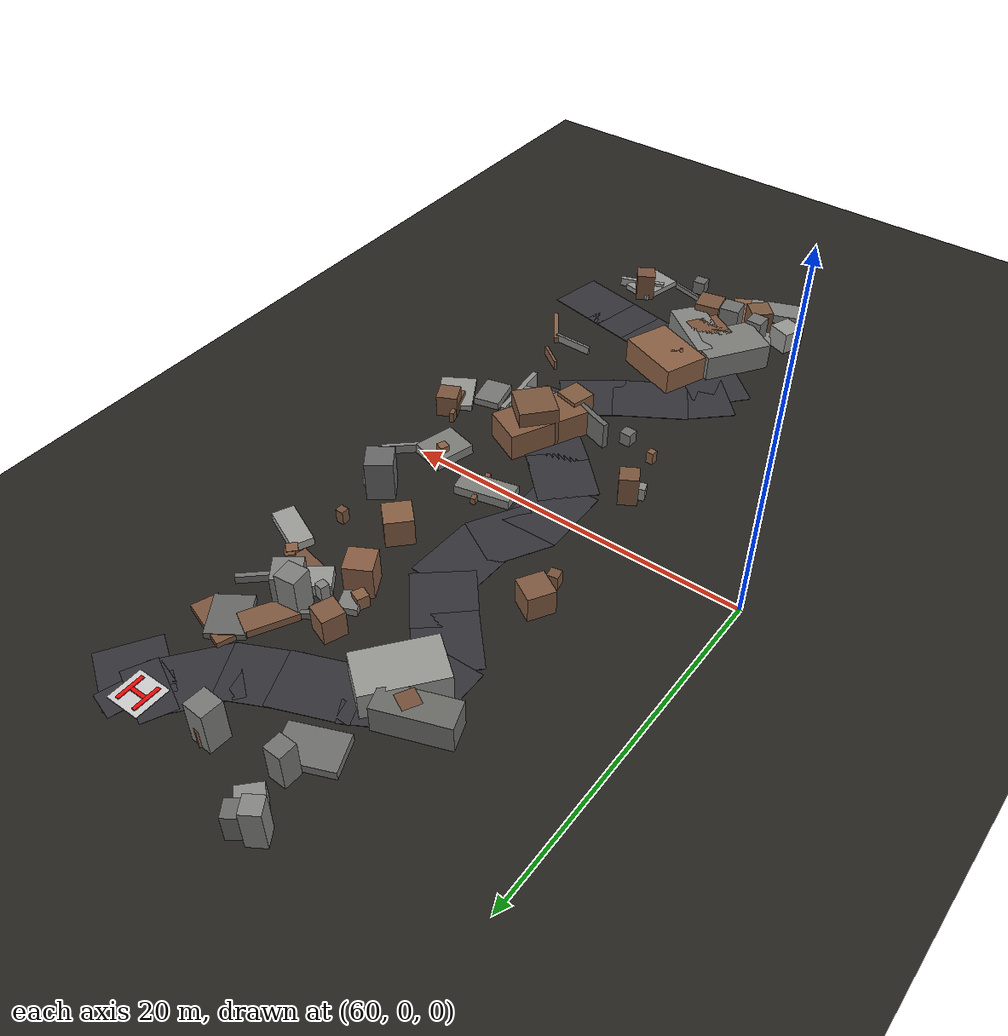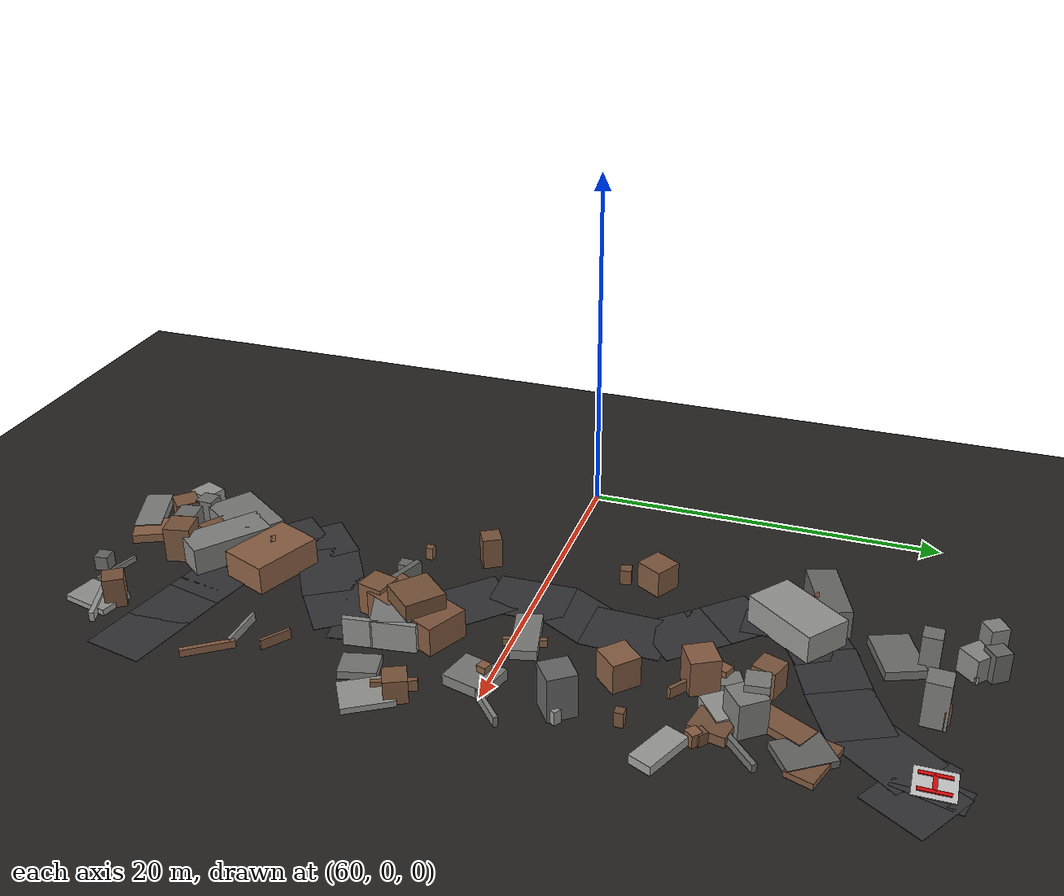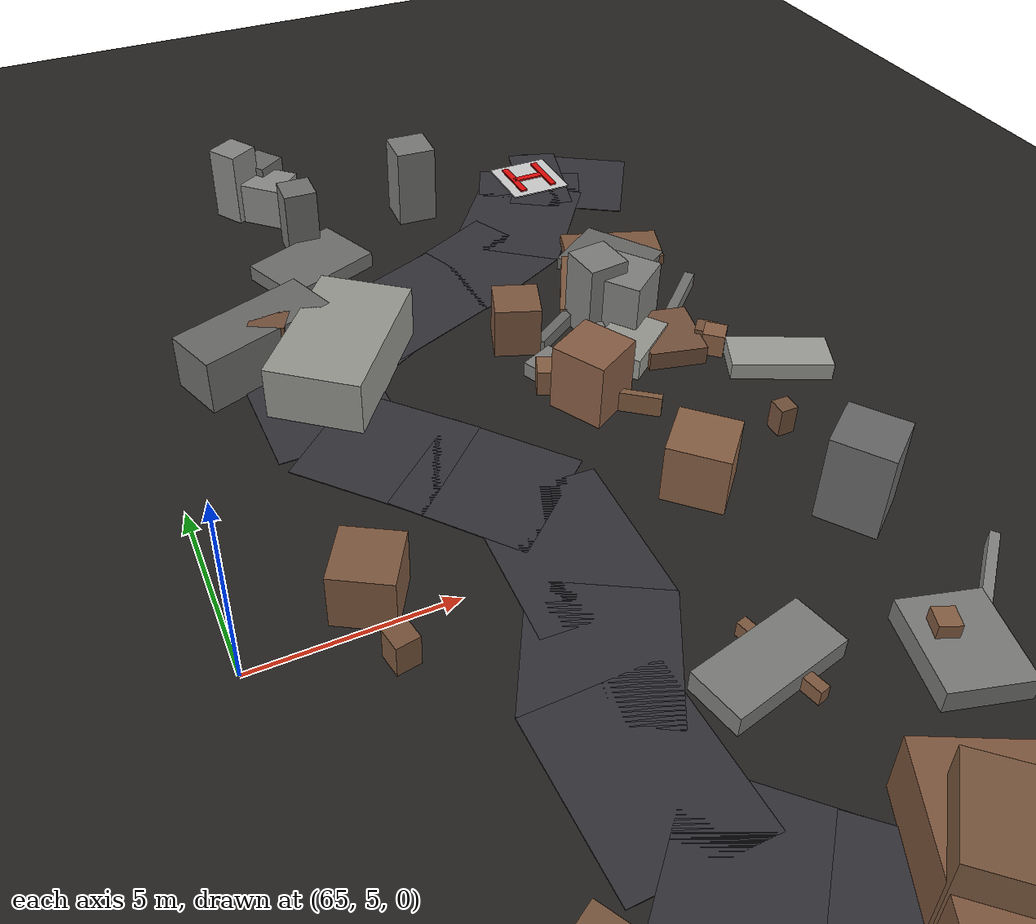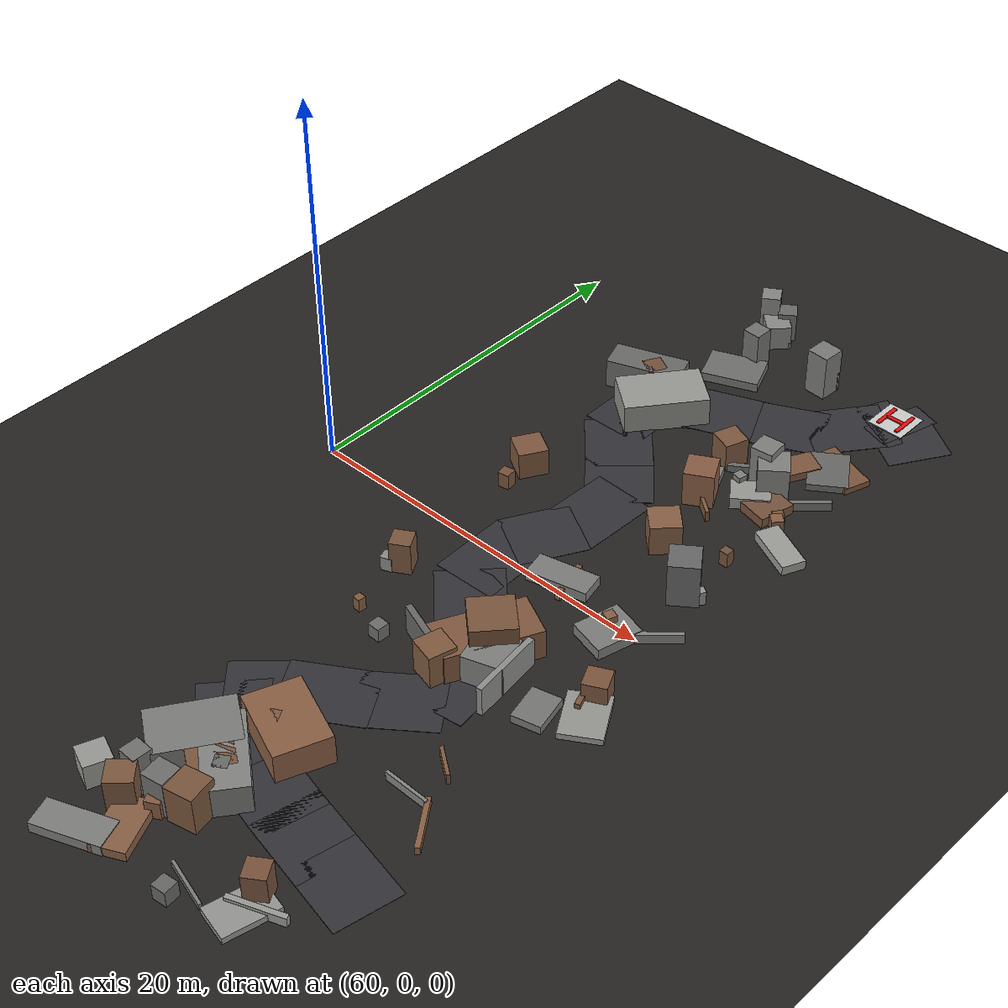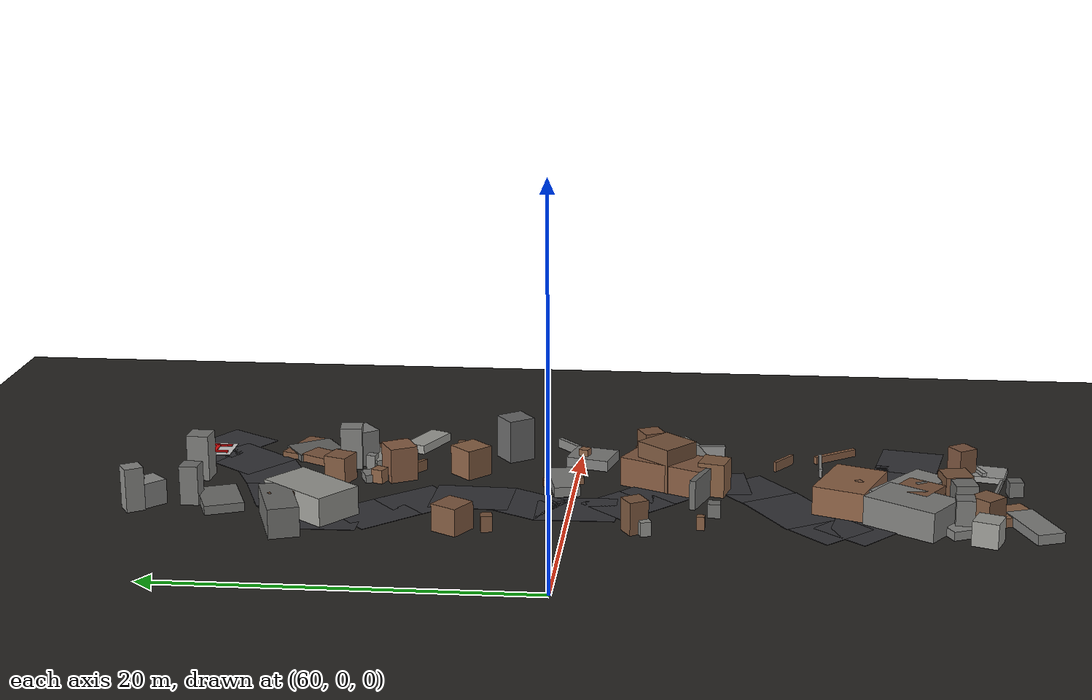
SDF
<sdf version="1.6">
 <world name="navitas_arena">
  <model name="ground_plane">
   <static>true</static>
   <link name="link">
    <collision name="collision">
     <geometry><plane><normal>0 0 1</normal><size>400 400</size></plane></geometry>
     <surface><friction><ode><mu>0.750</mu><mu2>0.750</mu2></ode></friction></surface>
    </collision>
    <visual name="visual">
     <cast_shadows>false</cast_shadows>
     <geometry><plane><normal>0 0 1</normal><size>400 400</size></plane></geometry>
     <material><ambient>0.150 0.140 0.130 1</ambient><diffuse>0.150 0.140 0.130 1</diffuse></material>
    </visual>
   </link>
  </model>
  <model name="road_zor_1_5">
   <static>true</static>
   <pose>80.479 -18.358 0.040 0 0 2.939</pose>
   <link name="link">
    <collision name="col"><geometry><box><size>3.775 3.400 0.020</size></box></geometry></collision>
    <visual name="vis">
     <geometry><box><size>3.775 3.400 0.020</size></box></geometry>
     <material><ambient>0.20 0.20 0.22 1</ambient><diffuse>0.20 0.20 0.22 1</diffuse></material>
    </visual>
   </link>
  </model>
  <model name="road_zor_1_6">
   <static>true</static>
   <pose>77.614 -17.769 0.040 0 0 2.938</pose>
   <link name="link">
    <collision name="col"><geometry><box><size>3.875 3.400 0.020</size></box></geometry></collision>
    <visual name="vis">
     <geometry><box><size>3.875 3.400 0.020</size></box></geometry>
     <material><ambient>0.20 0.20 0.22 1</ambient><diffuse>0.20 0.20 0.22 1</diffuse></material>
    </visual>
   </link>
  </model>
  <model name="road_zor_1_7">
   <static>true</static>
   <pose>74.786 -17.151 0.040 0 0 2.914</pose>
   <link name="link">
    <collision name="col"><geometry><box><size>3.715 3.400 0.020</size></box></geometry></collision>
    <visual name="vis">
     <geometry><box><size>3.715 3.400 0.020</size></box></geometry>
     <material><ambient>0.20 0.20 0.22 1</ambient><diffuse>0.20 0.20 0.22 1</diffuse></material>
    </visual>
   </link>
  </model>
  <model name="road_zor_1_8">
   <static>true</static>
   <pose>72.265 -16.490 0.040 0 0 2.852</pose>
   <link name="link">
    <collision name="col"><geometry><box><size>3.300 3.400 0.020</size></box></geometry></collision>
    <visual name="vis">
     <geometry><box><size>3.300 3.400 0.020</size></box></geometry>
     <material><ambient>0.20 0.20 0.22 1</ambient><diffuse>0.20 0.20 0.22 1</diffuse></material>
    </visual>
   </link>
  </model>
  <model name="road_zor_1_9">
   <static>true</static>
   <pose>70.047 -15.196 0.040 0 0 2.414</pose>
   <link name="link">
    <collision name="col"><geometry><box><size>3.761 3.400 0.020</size></box></geometry></collision>
    <visual name="vis">
     <geometry><box><size>3.761 3.400 0.020</size></box></geometry>
     <material><ambient>0.20 0.20 0.22 1</ambient><diffuse>0.20 0.20 0.22 1</diffuse></material>
    </visual>
   </link>
  </model>
  <model name="road_zor_1_10">
   <static>true</static>
   <pose>69.868 -13.401 0.040 0 0 0.759</pose>
   <link name="link">
    <collision name="col"><geometry><box><size>3.351 3.400 0.020</size></box></geometry></collision>
    <visual name="vis">
     <geometry><box><size>3.351 3.400 0.020</size></box></geometry>
     <material><ambient>0.20 0.20 0.22 1</ambient><diffuse>0.20 0.20 0.22 1</diffuse></material>
    </visual>
   </link>
  </model>
  <model name="road_zor_1_11">
   <static>true</static>
   <pose>72.246 -11.646 0.040 0 0 0.549</pose>
   <link name="link">
    <collision name="col"><geometry><box><size>4.392 3.400 0.020</size></box></geometry></collision>
    <visual name="vis">
     <geometry><box><size>4.392 3.400 0.020</size></box></geometry>
     <material><ambient>0.20 0.20 0.22 1</ambient><diffuse>0.20 0.20 0.22 1</diffuse></material>
    </visual>
   </link>
  </model>
  <model name="road_zor_1_12">
   <static>true</static>
   <pose>74.956 -9.813 0.040 0 0 0.646</pose>
   <link name="link">
    <collision name="col"><geometry><box><size>3.960 3.400 0.020</size></box></geometry></collision>
    <visual name="vis">
     <geometry><box><size>3.960 3.400 0.020</size></box></geometry>
     <material><ambient>0.20 0.20 0.22 1</ambient><diffuse>0.20 0.20 0.22 1</diffuse></material>
    </visual>
   </link>
  </model>
  <model name="road_zor_1_13">
   <static>true</static>
   <pose>75.978 -7.446 0.040 0 0 1.707</pose>
   <link name="link">
    <collision name="col"><geometry><box><size>3.819 3.400 0.020</size></box></geometry></collision>
    <visual name="vis">
     <geometry><box><size>3.819 3.400 0.020</size></box></geometry>
     <material><ambient>0.20 0.20 0.22 1</ambient><diffuse>0.20 0.20 0.22 1</diffuse></material>
    </visual>
   </link>
  </model>
  <model name="road_zor_1_14">
   <static>true</static>
   <pose>74.680 -5.000 0.040 0 0 2.404</pose>
   <link name="link">
    <collision name="col"><geometry><box><size>3.872 3.400 0.020</size></box></geometry></collision>
    <visual name="vis">
     <geometry><box><size>3.872 3.400 0.020</size></box></geometry>
     <material><ambient>0.20 0.20 0.22 1</ambient><diffuse>0.20 0.20 0.22 1</diffuse></material>
    </visual>
   </link>
  </model>
  <model name="road_zor_1_15">
   <static>true</static>
   <pose>72.558 -3.000 0.040 0 0 2.368</pose>
   <link name="link">
    <collision name="col"><geometry><box><size>3.762 3.400 0.020</size></box></geometry></collision>
    <visual name="vis">
     <geometry><box><size>3.762 3.400 0.020</size></box></geometry>
     <material><ambient>0.20 0.20 0.22 1</ambient><diffuse>0.20 0.20 0.22 1</diffuse></material>
    </visual>
   </link>
  </model>
  <model name="road_zor_1_16">
   <static>true</static>
   <pose>71.496 -0.333 0.040 0 0 1.594</pose>
   <link name="link">
    <collision name="col"><geometry><box><size>4.234 3.400 0.020</size></box></geometry></collision>
    <visual name="vis">
     <geometry><box><size>4.234 3.400 0.020</size></box></geometry>
     <material><ambient>0.20 0.20 0.22 1</ambient><diffuse>0.20 0.20 0.22 1</diffuse></material>
    </visual>
   </link>
  </model>
  <model name="road_zor_1_17">
   <static>true</static>
   <pose>72.110 2.500 0.040 0 0 1.061</pose>
   <link name="link">
    <collision name="col"><geometry><box><size>3.574 3.400 0.020</size></box></geometry></collision>
    <visual name="vis">
     <geometry><box><size>3.574 3.400 0.020</size></box></geometry>
     <material><ambient>0.20 0.20 0.22 1</ambient><diffuse>0.20 0.20 0.22 1</diffuse></material>
    </visual>
   </link>
  </model>
  <model name="road_zor_1_18">
   <static>true</static>
   <pose>72.820 5.344 0.040 0 0 1.537</pose>
   <link name="link">
    <collision name="col"><geometry><box><size>4.257 3.400 0.020</size></box></geometry></collision>
    <visual name="vis">
     <geometry><box><size>4.257 3.400 0.020</size></box></geometry>
     <material><ambient>0.20 0.20 0.22 1</ambient><diffuse>0.20 0.20 0.22 1</diffuse></material>
    </visual>
   </link>
  </model>
  <model name="road_zor_1_19">
   <static>true</static>
   <pose>71.984 8.077 0.040 0 0 2.274</pose>
   <link name="link">
    <collision name="col"><geometry><box><size>3.665 3.400 0.020</size></box></geometry></collision>
    <visual name="vis">
     <geometry><box><size>3.665 3.400 0.020</size></box></geometry>
     <material><ambient>0.20 0.20 0.22 1</ambient><diffuse>0.20 0.20 0.22 1</diffuse></material>
    </visual>
   </link>
  </model>
  <model name="road_zor_1_20">
   <static>true</static>
   <pose>70.146 10.157 0.040 0 0 2.315</pose>
   <link name="link">
    <collision name="col"><geometry><box><size>3.688 3.400 0.020</size></box></geometry></collision>
    <visual name="vis">
     <geometry><box><size>3.688 3.400 0.020</size></box></geometry>
     <material><ambient>0.20 0.20 0.22 1</ambient><diffuse>0.20 0.20 0.22 1</diffuse></material>
    </visual>
   </link>
  </model>
  <model name="road_zor_1_21">
   <static>true</static>
   <pose>69.188 12.483 0.040 0 0 1.581</pose>
   <link name="link">
    <collision name="col"><geometry><box><size>3.501 3.400 0.020</size></box></geometry></collision>
    <visual name="vis">
     <geometry><box><size>3.501 3.400 0.020</size></box></geometry>
     <material><ambient>0.20 0.20 0.22 1</ambient><diffuse>0.20 0.20 0.22 1</diffuse></material>
    </visual>
   </link>
  </model>
  <model name="road_zor_1_22">
   <static>true</static>
   <pose>70.385 14.469 0.040 0 0 0.516</pose>
   <link name="link">
    <collision name="col"><geometry><box><size>3.684 3.400 0.020</size></box></geometry></collision>
    <visual name="vis">
     <geometry><box><size>3.684 3.400 0.020</size></box></geometry>
     <material><ambient>0.20 0.20 0.22 1</ambient><diffuse>0.20 0.20 0.22 1</diffuse></material>
    </visual>
   </link>
  </model>
  <model name="road_zor_1_23">
   <static>true</static>
   <pose>73.118 15.758 0.040 0 0 0.377</pose>
   <link name="link">
    <collision name="col"><geometry><box><size>4.174 3.400 0.020</size></box></geometry></collision>
    <visual name="vis">
     <geometry><box><size>4.174 3.400 0.020</size></box></geometry>
     <material><ambient>0.20 0.20 0.22 1</ambient><diffuse>0.20 0.20 0.22 1</diffuse></material>
    </visual>
   </link>
  </model>
  <model name="road_zor_1_24">
   <static>true</static>
   <pose>75.810 16.930 0.040 0 0 0.453</pose>
   <link name="link">
    <collision name="col"><geometry><box><size>3.502 3.400 0.020</size></box></geometry></collision>
    <visual name="vis">
     <geometry><box><size>3.502 3.400 0.020</size></box></geometry>
     <material><ambient>0.20 0.20 0.22 1</ambient><diffuse>0.20 0.20 0.22 1</diffuse></material>
    </visual>
   </link>
  </model>
  <model name="road_zor_1_25">
   <static>true</static>
   <pose>77.993 18.815 0.040 0 0 0.914</pose>
   <link name="link">
    <collision name="col"><geometry><box><size>4.219 3.400 0.020</size></box></geometry></collision>
    <visual name="vis">
     <geometry><box><size>4.219 3.400 0.020</size></box></geometry>
     <material><ambient>0.20 0.20 0.22 1</ambient><diffuse>0.20 0.20 0.22 1</diffuse></material>
    </visual>
   </link>
  </model>
  <model name="road_zor_1_26">
   <static>true</static>
   <pose>79.212 20.565 0.040 0 0 1.128</pose>
   <link name="link">
    <collision name="col"><geometry><box><size>1.863 3.400 0.020</size></box></geometry></collision>
    <visual name="vis">
     <geometry><box><size>1.863 3.400 0.020</size></box></geometry>
     <material><ambient>0.20 0.20 0.22 1</ambient><diffuse>0.20 0.20 0.22 1</diffuse></material>
    </visual>
   </link>
  </model>
  <model name="road_zor_2_17">
   <static>true</static>
   <pose>80.588 20.266 0.040 0 0 2.581</pose>
   <link name="link">
    <collision name="col"><geometry><box><size>3.662 3.400 0.020</size></box></geometry></collision>
    <visual name="vis">
     <geometry><box><size>3.662 3.400 0.020</size></box></geometry>
     <material><ambient>0.20 0.20 0.22 1</ambient><diffuse>0.20 0.20 0.22 1</diffuse></material>
    </visual>
   </link>
  </model>
  <model name="road_zor_3_27">
   <static>true</static>
   <pose>79.767 20.898 0.040 0 0 2.857</pose>
   <link name="link">
    <collision name="col"><geometry><box><size>1.626 3.400 0.020</size></box></geometry></collision>
    <visual name="vis">
     <geometry><box><size>1.626 3.400 0.020</size></box></geometry>
     <material><ambient>0.20 0.20 0.22 1</ambient><diffuse>0.20 0.20 0.22 1</diffuse></material>
    </visual>
   </link>
  </model>
  <model name="blk_zor_1_0_0">
   <static>true</static>
   <pose>72.610 -15.055 0.800 0 0 2.084</pose>
   <link name="link">
    <collision name="col"><geometry><box><size>0.669 0.669 1.600</size></box></geometry></collision>
    <visual name="vis">
     <geometry><box><size>0.669 0.669 1.600</size></box></geometry>
     <material><ambient>0.51 0.36 0.26 1</ambient><diffuse>0.51 0.36 0.26 1</diffuse></material>
    </visual>
   </link>
  </model>
  <model name="blk_zor_1_0_1">
   <static>true</static>
   <pose>72.599 -17.766 0.800 0 0 2.480</pose>
   <link name="link">
    <collision name="col"><geometry><box><size>4.468 2.106 1.600</size></box></geometry></collision>
    <visual name="vis">
     <geometry><box><size>4.468 2.106 1.600</size></box></geometry>
     <material><ambient>0.52 0.52 0.51 1</ambient><diffuse>0.52 0.52 0.51 1</diffuse></material>
    </visual>
   </link>
  </model>
  <model name="blk_zor_1_0_2">
   <static>true</static>
   <pose>72.168 -18.153 0.800 0 0 2.575</pose>
   <link name="link">
    <collision name="col"><geometry><box><size>2.085 2.085 1.600</size></box></geometry></collision>
    <visual name="vis">
     <geometry><box><size>2.085 2.085 1.600</size></box></geometry>
     <material><ambient>0.49 0.34 0.24 1</ambient><diffuse>0.49 0.34 0.24 1</diffuse></material>
    </visual>
   </link>
  </model>
  <model name="blk_zor_1_0_3">
   <static>true</static>
   <pose>73.030 -18.261 0.800 0 0 0.579</pose>
   <link name="link">
    <collision name="col"><geometry><box><size>0.704 0.704 1.600</size></box></geometry></collision>
    <visual name="vis">
     <geometry><box><size>0.704 0.704 1.600</size></box></geometry>
     <material><ambient>0.42 0.42 0.41 1</ambient><diffuse>0.42 0.42 0.41 1</diffuse></material>
    </visual>
   </link>
  </model>
  <model name="blk_zor_1_0_4">
   <static>true</static>
   <pose>70.535 -17.700 0.800 0 0 0.977</pose>
   <link name="link">
    <collision name="col"><geometry><box><size>4.115 2.708 1.600</size></box></geometry></collision>
    <visual name="vis">
     <geometry><box><size>4.115 2.708 1.600</size></box></geometry>
     <material><ambient>0.49 0.49 0.48 1</ambient><diffuse>0.49 0.49 0.48 1</diffuse></material>
    </visual>
   </link>
  </model>
  <model name="blk_zor_1_0_5">
   <static>true</static>
   <pose>73.119 -14.687 0.800 0 0 2.768</pose>
   <link name="link">
    <collision name="col"><geometry><box><size>3.964 2.799 1.600</size></box></geometry></collision>
    <visual name="vis">
     <geometry><box><size>3.964 2.799 1.600</size></box></geometry>
     <material><ambient>0.55 0.38 0.27 1</ambient><diffuse>0.55 0.38 0.27 1</diffuse></material>
    </visual>
   </link>
  </model>
  <model name="blk_zor_1_1_0">
   <static>true</static>
   <pose>76.683 -5.889 0.800 0 0 1.874</pose>
   <link name="link">
    <collision name="col"><geometry><box><size>2.076 2.076 1.600</size></box></geometry></collision>
    <visual name="vis">
     <geometry><box><size>2.076 2.076 1.600</size></box></geometry>
     <material><ambient>0.50 0.50 0.49 1</ambient><diffuse>0.50 0.50 0.49 1</diffuse></material>
    </visual>
   </link>
  </model>
  <model name="blk_zor_1_1_1">
   <static>true</static>
   <pose>77.766 -6.126 0.800 0 0 1.690</pose>
   <link name="link">
    <collision name="col"><geometry><box><size>3.843 0.296 1.600</size></box></geometry></collision>
    <visual name="vis">
     <geometry><box><size>3.843 0.296 1.600</size></box></geometry>
     <material><ambient>0.56 0.56 0.55 1</ambient><diffuse>0.56 0.56 0.55 1</diffuse></material>
    </visual>
   </link>
  </model>
  <model name="blk_zor_1_1_2">
   <static>true</static>
   <pose>73.731 -7.014 0.800 0 0 2.800</pose>
   <link name="link">
    <collision name="col"><geometry><box><size>3.606 0.332 1.600</size></box></geometry></collision>
    <visual name="vis">
     <geometry><box><size>3.606 0.332 1.600</size></box></geometry>
     <material><ambient>0.41 0.41 0.40 1</ambient><diffuse>0.41 0.41 0.40 1</diffuse></material>
    </visual>
   </link>
  </model>
  <model name="blk_zor_1_1_3">
   <static>true</static>
   <pose>75.589 -5.103 0.800 0 0 1.119</pose>
   <link name="link">
    <collision name="col"><geometry><box><size>4.817 2.415 1.600</size></box></geometry></collision>
    <visual name="vis">
     <geometry><box><size>4.817 2.415 1.600</size></box></geometry>
     <material><ambient>0.51 0.35 0.25 1</ambient><diffuse>0.51 0.35 0.25 1</diffuse></material>
    </visual>
   </link>
  </model>
  <model name="blk_zor_1_1_4">
   <static>true</static>
   <pose>75.812 -4.917 1.245 0 0 0.841</pose>
   <link name="link">
    <collision name="col"><geometry><box><size>2.232 2.232 2.489</size></box></geometry></collision>
    <visual name="vis">
     <geometry><box><size>2.232 2.232 2.489</size></box></geometry>
     <material><ambient>0.48 0.34 0.24 1</ambient><diffuse>0.48 0.34 0.24 1</diffuse></material>
    </visual>
   </link>
  </model>
  <model name="blk_zor_1_1_5">
   <static>true</static>
   <pose>74.827 -7.527 0.918 0 0 1.313</pose>
   <link name="link">
    <collision name="col"><geometry><box><size>1.452 1.452 1.835</size></box></geometry></collision>
    <visual name="vis">
     <geometry><box><size>1.452 1.452 1.835</size></box></geometry>
     <material><ambient>0.51 0.36 0.25 1</ambient><diffuse>0.51 0.36 0.25 1</diffuse></material>
    </visual>
   </link>
  </model>
  <model name="blk_zor_1_2_0">
   <static>true</static>
   <pose>70.137 13.495 0.800 0 0 0.905</pose>
   <link name="link">
    <collision name="col"><geometry><box><size>4.401 2.657 1.600</size></box></geometry></collision>
    <visual name="vis">
     <geometry><box><size>4.401 2.657 1.600</size></box></geometry>
     <material><ambient>0.60 0.60 0.58 1</ambient><diffuse>0.60 0.60 0.58 1</diffuse></material>
    </visual>
   </link>
  </model>
  <model name="blk_zor_1_2_1">
   <static>true</static>
   <pose>68.570 14.751 0.800 0 0 2.650</pose>
   <link name="link">
    <collision name="col"><geometry><box><size>1.004 1.004 1.600</size></box></geometry></collision>
    <visual name="vis">
     <geometry><box><size>1.004 1.004 1.600</size></box></geometry>
     <material><ambient>0.46 0.32 0.23 1</ambient><diffuse>0.46 0.32 0.23 1</diffuse></material>
    </visual>
   </link>
  </model>
  <model name="blk_zor_1_2_5">
   <static>true</static>
   <pose>68.097 14.767 0.800 0 0 0.346</pose>
   <link name="link">
    <collision name="col"><geometry><box><size>3.963 1.620 1.600</size></box></geometry></collision>
    <visual name="vis">
     <geometry><box><size>3.963 1.620 1.600</size></box></geometry>
     <material><ambient>0.42 0.42 0.41 1</ambient><diffuse>0.42 0.42 0.41 1</diffuse></material>
    </visual>
   </link>
  </model>
  <model name="deb_zor_0">
   <static>true</static>
   <pose>78.560 -22.097 0.169 0 0 1.342</pose>
   <link name="link">
    <collision name="col"><geometry><box><size>2.758 1.846 0.338</size></box></geometry></collision>
    <visual name="vis">
     <geometry><box><size>2.758 1.846 0.338</size></box></geometry>
     <material><ambient>0.59 0.59 0.58 1</ambient><diffuse>0.59 0.59 0.58 1</diffuse></material>
    </visual>
   </link>
  </model>
  <model name="deb_zor_3">
   <static>true</static>
   <pose>77.742 11.178 0.319 0 0 0.641</pose>
   <link name="link">
    <collision name="col"><geometry><box><size>1.991 1.432 0.638</size></box></geometry></collision>
    <visual name="vis">
     <geometry><box><size>1.991 1.432 0.638</size></box></geometry>
     <material><ambient>0.60 0.60 0.58 1</ambient><diffuse>0.60 0.60 0.58 1</diffuse></material>
    </visual>
   </link>
  </model>
  <model name="deb_zor_4">
   <static>true</static>
   <pose>70.679 22.341 0.675 0 0 0.809</pose>
   <link name="link">
    <collision name="col"><geometry><box><size>1.320 1.320 1.350</size></box></geometry></collision>
    <visual name="vis">
     <geometry><box><size>1.320 1.320 1.350</size></box></geometry>
     <material><ambient>0.55 0.55 0.54 1</ambient><diffuse>0.55 0.55 0.54 1</diffuse></material>
    </visual>
   </link>
  </model>
  <model name="deb_zor_6">
   <static>true</static>
   <pose>79.848 10.633 0.336 0 0 0.860</pose>
   <link name="link">
    <collision name="col"><geometry><box><size>0.543 0.543 0.672</size></box></geometry></collision>
    <visual name="vis">
     <geometry><box><size>0.543 0.543 0.672</size></box></geometry>
     <material><ambient>0.47 0.33 0.23 1</ambient><diffuse>0.47 0.33 0.23 1</diffuse></material>
    </visual>
   </link>
  </model>
  <model name="deb_zor_7">
   <static>true</static>
   <pose>79.664 3.783 1.207 0 0 2.199</pose>
   <link name="link">
    <collision name="col"><geometry><box><size>1.545 1.545 2.415</size></box></geometry></collision>
    <visual name="vis">
     <geometry><box><size>1.545 1.545 2.415</size></box></geometry>
     <material><ambient>0.41 0.41 0.41 1</ambient><diffuse>0.41 0.41 0.41 1</diffuse></material>
    </visual>
   </link>
  </model>
  <model name="deb_zor_11">
   <static>true</static>
   <pose>74.970 20.658 1.258 0 0 3.082</pose>
   <link name="link">
    <collision name="col"><geometry><box><size>1.226 1.226 2.516</size></box></geometry></collision>
    <visual name="vis">
     <geometry><box><size>1.226 1.226 2.516</size></box></geometry>
     <material><ambient>0.48 0.48 0.47 1</ambient><diffuse>0.48 0.48 0.47 1</diffuse></material>
    </visual>
   </link>
  </model>
  <model name="deb_zor_21">
   <static>true</static>
   <pose>75.494 10.787 0.221 0 0 1.992</pose>
   <link name="link">
    <collision name="col"><geometry><box><size>1.940 1.031 0.441</size></box></geometry></collision>
    <visual name="vis">
     <geometry><box><size>1.940 1.031 0.441</size></box></geometry>
     <material><ambient>0.50 0.50 0.49 1</ambient><diffuse>0.50 0.50 0.49 1</diffuse></material>
    </visual>
   </link>
  </model>
  <model name="deb_zor_22">
   <static>true</static>
   <pose>81.115 -3.835 0.656 0 0 0.455</pose>
   <link name="link">
    <collision name="col"><geometry><box><size>1.210 1.210 1.313</size></box></geometry></collision>
    <visual name="vis">
     <geometry><box><size>1.210 1.210 1.313</size></box></geometry>
     <material><ambient>0.49 0.34 0.24 1</ambient><diffuse>0.49 0.34 0.24 1</diffuse></material>
    </visual>
   </link>
  </model>
  <model name="deb_zor_29">
   <static>true</static>
   <pose>74.985 0.659 0.276 0 0 0.223</pose>
   <link name="link">
    <collision name="col"><geometry><box><size>3.196 1.393 0.552</size></box></geometry></collision>
    <visual name="vis">
     <geometry><box><size>3.196 1.393 0.552</size></box></geometry>
     <material><ambient>0.49 0.49 0.48 1</ambient><diffuse>0.49 0.49 0.48 1</diffuse></material>
    </visual>
   </link>
  </model>
  <model name="deb_zor_30">
   <static>true</static>
   <pose>78.900 -13.336 0.246 0 0 3.124</pose>
   <link name="link">
    <collision name="col"><geometry><box><size>2.410 0.170 0.492</size></box></geometry></collision>
    <visual name="vis">
     <geometry><box><size>2.410 0.170 0.492</size></box></geometry>
     <material><ambient>0.53 0.53 0.52 1</ambient><diffuse>0.53 0.53 0.52 1</diffuse></material>
    </visual>
   </link>
  </model>
  <model name="deb_zor_32">
   <static>true</static>
   <pose>78.130 12.382 0.983 0 0 2.222</pose>
   <link name="link">
    <collision name="col"><geometry><box><size>1.575 1.575 1.965</size></box></geometry></collision>
    <visual name="vis">
     <geometry><box><size>1.575 1.575 1.965</size></box></geometry>
     <material><ambient>0.51 0.51 0.50 1</ambient><diffuse>0.51 0.51 0.50 1</diffuse></material>
    </visual>
   </link>
  </model>
  <model name="deb_zor_35">
   <static>true</static>
   <pose>70.816 22.269 0.197 0 0 0.161</pose>
   <link name="link">
    <collision name="col"><geometry><box><size>1.565 0.208 0.393</size></box></geometry></collision>
    <visual name="vis">
     <geometry><box><size>1.565 0.208 0.393</size></box></geometry>
     <material><ambient>0.60 0.60 0.58 1</ambient><diffuse>0.60 0.60 0.58 1</diffuse></material>
    </visual>
   </link>
  </model>
  <model name="deb_zor_37">
   <static>true</static>
   <pose>79.735 15.773 0.168 0 0 2.811</pose>
   <link name="link">
    <collision name="col"><geometry><box><size>3.007 1.470 0.335</size></box></geometry></collision>
    <visual name="vis">
     <geometry><box><size>3.007 1.470 0.335</size></box></geometry>
     <material><ambient>0.49 0.34 0.24 1</ambient><diffuse>0.49 0.34 0.24 1</diffuse></material>
    </visual>
   </link>
  </model>
  <model name="deb_zor_50">
   <static>true</static>
   <pose>69.818 -20.260 0.239 0 0 2.009</pose>
   <link name="link">
    <collision name="col"><geometry><box><size>1.892 1.609 0.477</size></box></geometry></collision>
    <visual name="vis">
     <geometry><box><size>1.892 1.609 0.477</size></box></geometry>
     <material><ambient>0.53 0.53 0.52 1</ambient><diffuse>0.53 0.53 0.52 1</diffuse></material>
    </visual>
   </link>
  </model>
  <model name="deb_zor_56">
   <static>true</static>
   <pose>80.750 -14.216 0.204 0 0 2.190</pose>
   <link name="link">
    <collision name="col"><geometry><box><size>2.752 0.249 0.408</size></box></geometry></collision>
    <visual name="vis">
     <geometry><box><size>2.752 0.249 0.408</size></box></geometry>
     <material><ambient>0.55 0.38 0.27 1</ambient><diffuse>0.55 0.38 0.27 1</diffuse></material>
    </visual>
   </link>
  </model>
  <model name="deb_zor_60">
   <static>true</static>
   <pose>79.974 10.355 0.348 0 0 2.427</pose>
   <link name="link">
    <collision name="col"><geometry><box><size>0.614 0.614 0.695</size></box></geometry></collision>
    <visual name="vis">
     <geometry><box><size>0.614 0.614 0.695</size></box></geometry>
     <material><ambient>0.55 0.38 0.27 1</ambient><diffuse>0.55 0.38 0.27 1</diffuse></material>
    </visual>
   </link>
  </model>
  <model name="deb_zor_61">
   <static>true</static>
   <pose>73.273 -20.174 1.016 0 0 1.775</pose>
   <link name="link">
    <collision name="col"><geometry><box><size>1.490 1.490 2.031</size></box></geometry></collision>
    <visual name="vis">
     <geometry><box><size>1.490 1.490 2.031</size></box></geometry>
     <material><ambient>0.48 0.34 0.24 1</ambient><diffuse>0.48 0.34 0.24 1</diffuse></material>
    </visual>
   </link>
  </model>
  <model name="deb_zor_69">
   <static>true</static>
   <pose>68.714 -3.553 0.881 0 0 2.097</pose>
   <link name="link">
    <collision name="col"><geometry><box><size>1.072 1.072 1.762</size></box></geometry></collision>
    <visual name="vis">
     <geometry><box><size>1.072 1.072 1.762</size></box></geometry>
     <material><ambient>0.48 0.34 0.24 1</ambient><diffuse>0.48 0.34 0.24 1</diffuse></material>
    </visual>
   </link>
  </model>
  <model name="deb_zor_79">
   <static>true</static>
   <pose>71.000 20.134 1.069 0 0 1.531</pose>
   <link name="link">
    <collision name="col"><geometry><box><size>1.003 1.003 2.138</size></box></geometry></collision>
    <visual name="vis">
     <geometry><box><size>1.003 1.003 2.138</size></box></geometry>
     <material><ambient>0.45 0.45 0.44 1</ambient><diffuse>0.45 0.45 0.44 1</diffuse></material>
    </visual>
   </link>
  </model>
  <model name="deb_zor_83">
   <static>true</static>
   <pose>75.760 9.758 0.961 0 0 2.073</pose>
   <link name="link">
    <collision name="col"><geometry><box><size>1.547 1.547 1.921</size></box></geometry></collision>
    <visual name="vis">
     <geometry><box><size>1.547 1.547 1.921</size></box></geometry>
     <material><ambient>0.54 0.37 0.27 1</ambient><diffuse>0.54 0.37 0.27 1</diffuse></material>
    </visual>
   </link>
  </model>
  <model name="deb_zor_91">
   <static>true</static>
   <pose>79.125 -11.300 0.281 0 0 2.522</pose>
   <link name="link">
    <collision name="col"><geometry><box><size>1.663 0.175 0.563</size></box></geometry></collision>
    <visual name="vis">
     <geometry><box><size>1.663 0.175 0.563</size></box></geometry>
     <material><ambient>0.51 0.36 0.26 1</ambient><diffuse>0.51 0.36 0.26 1</diffuse></material>
    </visual>
   </link>
  </model>
  <model name="deb_zor_92">
   <static>true</static>
   <pose>69.296 -6.928 0.358 0 0 3.068</pose>
   <link name="link">
    <collision name="col"><geometry><box><size>0.412 0.412 0.716</size></box></geometry></collision>
    <visual name="vis">
     <geometry><box><size>0.412 0.412 0.716</size></box></geometry>
     <material><ambient>0.51 0.36 0.25 1</ambient><diffuse>0.51 0.36 0.25 1</diffuse></material>
    </visual>
   </link>
  </model>
  <model name="deb_zor_94">
   <static>true</static>
   <pose>70.313 -23.963 0.275 0 0 0.360</pose>
   <link name="link">
    <collision name="col"><geometry><box><size>3.470 1.517 0.550</size></box></geometry></collision>
    <visual name="vis">
     <geometry><box><size>3.470 1.517 0.550</size></box></geometry>
     <material><ambient>0.50 0.50 0.49 1</ambient><diffuse>0.50 0.50 0.49 1</diffuse></material>
    </visual>
   </link>
  </model>
  <model name="deb_zor_118">
   <static>true</static>
   <pose>76.822 11.492 0.463 0 0 1.359</pose>
   <link name="link">
    <collision name="col"><geometry><box><size>0.513 0.513 0.927</size></box></geometry></collision>
    <visual name="vis">
     <geometry><box><size>0.513 0.513 0.927</size></box></geometry>
     <material><ambient>0.51 0.51 0.50 1</ambient><diffuse>0.51 0.51 0.50 1</diffuse></material>
    </visual>
   </link>
  </model>
  <model name="deb_zor_120">
   <static>true</static>
   <pose>76.206 12.709 0.197 0 0 0.581</pose>
   <link name="link">
    <collision name="col"><geometry><box><size>1.739 0.287 0.395</size></box></geometry></collision>
    <visual name="vis">
     <geometry><box><size>1.739 0.287 0.395</size></box></geometry>
     <material><ambient>0.42 0.42 0.41 1</ambient><diffuse>0.42 0.42 0.41 1</diffuse></material>
    </visual>
   </link>
  </model>
  <model name="deb_zor_121">
   <static>true</static>
   <pose>80.540 3.948 0.376 0 0 2.575</pose>
   <link name="link">
    <collision name="col"><geometry><box><size>0.415 0.415 0.753</size></box></geometry></collision>
    <visual name="vis">
     <geometry><box><size>0.415 0.415 0.753</size></box></geometry>
     <material><ambient>0.59 0.59 0.57 1</ambient><diffuse>0.59 0.59 0.57 1</diffuse></material>
    </visual>
   </link>
  </model>
  <model name="deb_zor_133">
   <static>true</static>
   <pose>68.498 -21.400 0.668 0 0 2.771</pose>
   <link name="link">
    <collision name="col"><geometry><box><size>1.377 1.377 1.336</size></box></geometry></collision>
    <visual name="vis">
     <geometry><box><size>1.377 1.377 1.336</size></box></geometry>
     <material><ambient>0.60 0.60 0.58 1</ambient><diffuse>0.60 0.60 0.58 1</diffuse></material>
    </visual>
   </link>
  </model>
  <model name="deb_zor_135">
   <static>true</static>
   <pose>75.171 20.924 0.553 0 0 2.726</pose>
   <link name="link">
    <collision name="col"><geometry><box><size>0.688 0.688 1.106</size></box></geometry></collision>
    <visual name="vis">
     <geometry><box><size>0.688 0.688 1.106</size></box></geometry>
     <material><ambient>0.53 0.37 0.27 1</ambient><diffuse>0.53 0.37 0.27 1</diffuse></material>
    </visual>
   </link>
  </model>
  <model name="deb_zor_136">
   <static>true</static>
   <pose>79.788 -6.315 0.219 0 0 1.803</pose>
   <link name="link">
    <collision name="col"><geometry><box><size>1.979 1.528 0.439</size></box></geometry></collision>
    <visual name="vis">
     <geometry><box><size>1.979 1.528 0.439</size></box></geometry>
     <material><ambient>0.47 0.47 0.46 1</ambient><diffuse>0.47 0.47 0.46 1</diffuse></material>
    </visual>
   </link>
  </model>
  <model name="deb_zor_146">
   <static>true</static>
   <pose>79.036 -21.738 0.258 0 0 0.353</pose>
   <link name="link">
    <collision name="col"><geometry><box><size>2.817 0.268 0.517</size></box></geometry></collision>
    <visual name="vis">
     <geometry><box><size>2.817 0.268 0.517</size></box></geometry>
     <material><ambient>0.61 0.61 0.60 1</ambient><diffuse>0.61 0.61 0.60 1</diffuse></material>
    </visual>
   </link>
  </model>
  <model name="deb_zor_150">
   <static>true</static>
   <pose>76.669 5.923 0.825 0 0 2.373</pose>
   <link name="link">
    <collision name="col"><geometry><box><size>1.582 1.582 1.649</size></box></geometry></collision>
    <visual name="vis">
     <geometry><box><size>1.582 1.582 1.649</size></box></geometry>
     <material><ambient>0.54 0.38 0.27 1</ambient><diffuse>0.54 0.38 0.27 1</diffuse></material>
    </visual>
   </link>
  </model>
  <model name="deb_zor_151">
   <static>true</static>
   <pose>80.852 0.681 0.271 0 0 0.738</pose>
   <link name="link">
    <collision name="col"><geometry><box><size>2.286 0.236 0.542</size></box></geometry></collision>
    <visual name="vis">
     <geometry><box><size>2.286 0.236 0.542</size></box></geometry>
     <material><ambient>0.52 0.52 0.51 1</ambient><diffuse>0.52 0.52 0.51 1</diffuse></material>
    </visual>
   </link>
  </model>
  <model name="deb_zor_164">
   <static>true</static>
   <pose>77.455 12.724 1.179 0 0 1.676</pose>
   <link name="link">
    <collision name="col"><geometry><box><size>1.198 1.198 2.357</size></box></geometry></collision>
    <visual name="vis">
     <geometry><box><size>1.198 1.198 2.357</size></box></geometry>
     <material><ambient>0.50 0.50 0.49 1</ambient><diffuse>0.50 0.50 0.49 1</diffuse></material>
    </visual>
   </link>
  </model>
  <model name="deb_zor_165">
   <static>true</static>
   <pose>70.505 -21.541 0.898 0 0 2.335</pose>
   <link name="link">
    <collision name="col"><geometry><box><size>1.325 1.325 1.797</size></box></geometry></collision>
    <visual name="vis">
     <geometry><box><size>1.325 1.325 1.797</size></box></geometry>
     <material><ambient>0.49 0.35 0.25 1</ambient><diffuse>0.49 0.35 0.25 1</diffuse></material>
    </visual>
   </link>
  </model>
  <model name="deb_zor_166">
   <static>true</static>
   <pose>70.857 18.575 0.246 0 0 0.387</pose>
   <link name="link">
    <collision name="col"><geometry><box><size>3.044 2.108 0.493</size></box></geometry></collision>
    <visual name="vis">
     <geometry><box><size>3.044 2.108 0.493</size></box></geometry>
     <material><ambient>0.44 0.44 0.43 1</ambient><diffuse>0.44 0.44 0.43 1</diffuse></material>
    </visual>
   </link>
  </model>
  <model name="deb_zor_174">
   <static>true</static>
   <pose>77.896 14.154 0.219 0 0 1.080</pose>
   <link name="link">
    <collision name="col"><geometry><box><size>2.777 1.382 0.438</size></box></geometry></collision>
    <visual name="vis">
     <geometry><box><size>2.777 1.382 0.438</size></box></geometry>
     <material><ambient>0.50 0.35 0.25 1</ambient><diffuse>0.50 0.35 0.25 1</diffuse></material>
    </visual>
   </link>
  </model>
  <model name="deb_zor_179">
   <static>true</static>
   <pose>72.009 -21.039 0.477 0 0 0.492</pose>
   <link name="link">
    <collision name="col"><geometry><box><size>0.738 0.738 0.954</size></box></geometry></collision>
    <visual name="vis">
     <geometry><box><size>0.738 0.738 0.954</size></box></geometry>
     <material><ambient>0.52 0.36 0.26 1</ambient><diffuse>0.52 0.36 0.26 1</diffuse></material>
    </visual>
   </link>
  </model>
  <model name="deb_zor_180">
   <static>true</static>
   <pose>75.730 -23.612 0.421 0 0 0.102</pose>
   <link name="link">
    <collision name="col"><geometry><box><size>0.777 0.777 0.841</size></box></geometry></collision>
    <visual name="vis">
     <geometry><box><size>0.777 0.777 0.841</size></box></geometry>
     <material><ambient>0.41 0.41 0.40 1</ambient><diffuse>0.41 0.41 0.40 1</diffuse></material>
    </visual>
   </link>
  </model>
  <model name="deb_zor_199">
   <static>true</static>
   <pose>69.746 22.956 1.185 0 0 2.136</pose>
   <link name="link">
    <collision name="col"><geometry><box><size>1.005 1.005 2.369</size></box></geometry></collision>
    <visual name="vis">
     <geometry><box><size>1.005 1.005 2.369</size></box></geometry>
     <material><ambient>0.53 0.53 0.52 1</ambient><diffuse>0.53 0.53 0.52 1</diffuse></material>
    </visual>
   </link>
  </model>
  <model name="deb_zor_215">
   <static>true</static>
   <pose>75.336 0.689 0.198 0 0 1.818</pose>
   <link name="link">
    <collision name="col"><geometry><box><size>2.244 0.278 0.395</size></box></geometry></collision>
    <visual name="vis">
     <geometry><box><size>2.244 0.278 0.395</size></box></geometry>
     <material><ambient>0.50 0.35 0.25 1</ambient><diffuse>0.50 0.35 0.25 1</diffuse></material>
    </visual>
   </link>
  </model>
  <model name="deb_zor_222">
   <static>true</static>
   <pose>70.076 -20.363 0.918 0 0 1.544</pose>
   <link name="link">
    <collision name="col"><geometry><box><size>0.991 0.991 1.836</size></box></geometry></collision>
    <visual name="vis">
     <geometry><box><size>0.991 0.991 1.836</size></box></geometry>
     <material><ambient>0.45 0.45 0.44 1</ambient><diffuse>0.45 0.45 0.44 1</diffuse></material>
    </visual>
   </link>
  </model>
  <model name="deb_zor_226">
   <static>true</static>
   <pose>70.672 23.231 0.810 0 0 0.618</pose>
   <link name="link">
    <collision name="col"><geometry><box><size>0.985 0.985 1.620</size></box></geometry></collision>
    <visual name="vis">
     <geometry><box><size>0.985 0.985 1.620</size></box></geometry>
     <material><ambient>0.42 0.42 0.41 1</ambient><diffuse>0.42 0.42 0.41 1</diffuse></material>
    </visual>
   </link>
  </model>
  <model name="deb_zor_235">
   <static>true</static>
   <pose>74.974 20.312 0.520 0 0 1.877</pose>
   <link name="link">
    <collision name="col"><geometry><box><size>0.411 0.411 1.040</size></box></geometry></collision>
    <visual name="vis">
     <geometry><box><size>0.411 0.411 1.040</size></box></geometry>
     <material><ambient>0.49 0.49 0.48 1</ambient><diffuse>0.49 0.49 0.48 1</diffuse></material>
    </visual>
   </link>
  </model>
  <model name="deb_zor_236">
   <static>true</static>
   <pose>80.691 -4.085 0.305 0 0 1.937</pose>
   <link name="link">
    <collision name="col"><geometry><box><size>2.261 0.263 0.609</size></box></geometry></collision>
    <visual name="vis">
     <geometry><box><size>2.261 0.263 0.609</size></box></geometry>
     <material><ambient>0.49 0.34 0.24 1</ambient><diffuse>0.49 0.34 0.24 1</diffuse></material>
    </visual>
   </link>
  </model>
  <model name="deb_zor_237">
   <static>true</static>
   <pose>71.239 -7.577 0.378 0 0 1.554</pose>
   <link name="link">
    <collision name="col"><geometry><box><size>0.670 0.670 0.757</size></box></geometry></collision>
    <visual name="vis">
     <geometry><box><size>0.670 0.670 0.757</size></box></geometry>
     <material><ambient>0.43 0.43 0.42 1</ambient><diffuse>0.43 0.43 0.42 1</diffuse></material>
    </visual>
   </link>
  </model>
  <model name="deb_zor_238">
   <static>true</static>
   <pose>76.189 9.306 0.304 0 0 2.493</pose>
   <link name="link">
    <collision name="col"><geometry><box><size>2.532 0.195 0.607</size></box></geometry></collision>
    <visual name="vis">
     <geometry><box><size>2.532 0.195 0.607</size></box></geometry>
     <material><ambient>0.51 0.36 0.25 1</ambient><diffuse>0.51 0.36 0.25 1</diffuse></material>
    </visual>
   </link>
  </model>
  <model name="deb_zor_239">
   <static>true</static>
   <pose>78.669 -0.244 0.485 0 0 2.768</pose>
   <link name="link">
    <collision name="col"><geometry><box><size>0.530 0.530 0.970</size></box></geometry></collision>
    <visual name="vis">
     <geometry><box><size>0.530 0.530 0.970</size></box></geometry>
     <material><ambient>0.54 0.38 0.27 1</ambient><diffuse>0.54 0.38 0.27 1</diffuse></material>
    </visual>
   </link>
  </model>
  <model name="deb_zor_246">
   <static>true</static>
   <pose>68.259 -4.086 0.384 0 0 1.915</pose>
   <link name="link">
    <collision name="col"><geometry><box><size>0.583 0.583 0.768</size></box></geometry></collision>
    <visual name="vis">
     <geometry><box><size>0.583 0.583 0.768</size></box></geometry>
     <material><ambient>0.55 0.55 0.53 1</ambient><diffuse>0.55 0.55 0.53 1</diffuse></material>
    </visual>
   </link>
  </model>
  <model name="deb_zor_249">
   <static>true</static>
   <pose>81.592 -5.152 0.167 0 0 2.116</pose>
   <link name="link">
    <collision name="col"><geometry><box><size>2.672 2.086 0.333</size></box></geometry></collision>
    <visual name="vis">
     <geometry><box><size>2.672 2.086 0.333</size></box></geometry>
     <material><ambient>0.59 0.59 0.57 1</ambient><diffuse>0.59 0.59 0.57 1</diffuse></material>
    </visual>
   </link>
  </model>
  <model name="deb_zor_253">
   <static>true</static>
   <pose>68.125 5.760 0.742 0 0 1.037</pose>
   <link name="link">
    <collision name="col"><geometry><box><size>1.534 1.534 1.484</size></box></geometry></collision>
    <visual name="vis">
     <geometry><box><size>1.534 1.534 1.484</size></box></geometry>
     <material><ambient>0.50 0.35 0.25 1</ambient><diffuse>0.50 0.35 0.25 1</diffuse></material>
    </visual>
   </link>
  </model>
  <model name="deb_zor_254">
   <static>true</static>
   <pose>75.947 -22.744 0.156 0 0 2.873</pose>
   <link name="link">
    <collision name="col"><geometry><box><size>2.625 0.160 0.313</size></box></geometry></collision>
    <visual name="vis">
     <geometry><box><size>2.625 0.160 0.313</size></box></geometry>
     <material><ambient>0.49 0.49 0.48 1</ambient><diffuse>0.49 0.49 0.48 1</diffuse></material>
    </visual>
   </link>
  </model>
  <model name="deb_zor_256">
   <static>true</static>
   <pose>75.012 10.748 0.383 0 0 1.181</pose>
   <link name="link">
    <collision name="col"><geometry><box><size>0.676 0.676 0.767</size></box></geometry></collision>
    <visual name="vis">
     <geometry><box><size>0.676 0.676 0.767</size></box></geometry>
     <material><ambient>0.54 0.38 0.27 1</ambient><diffuse>0.54 0.38 0.27 1</diffuse></material>
    </visual>
   </link>
  </model>
  <model name="deb_zor_257">
   <static>true</static>
   <pose>68.213 4.018 0.426 0 0 1.743</pose>
   <link name="link">
    <collision name="col"><geometry><box><size>0.609 0.609 0.852</size></box></geometry></collision>
    <visual name="vis">
     <geometry><box><size>0.609 0.609 0.852</size></box></geometry>
     <material><ambient>0.47 0.33 0.23 1</ambient><diffuse>0.47 0.33 0.23 1</diffuse></material>
    </visual>
   </link>
  </model>
  <model name="deb_zor_261">
   <static>true</static>
   <pose>78.443 -21.051 0.852 0 0 2.147</pose>
   <link name="link">
    <collision name="col"><geometry><box><size>1.110 1.110 1.704</size></box></geometry></collision>
    <visual name="vis">
     <geometry><box><size>1.110 1.110 1.704</size></box></geometry>
     <material><ambient>0.48 0.33 0.24 1</ambient><diffuse>0.48 0.33 0.24 1</diffuse></material>
    </visual>
   </link>
  </model>
  <model name="deb_zor_262">
   <static>true</static>
   <pose>75.058 12.923 0.754 0 0 2.793</pose>
   <link name="link">
    <collision name="col"><geometry><box><size>1.284 1.284 1.508</size></box></geometry></collision>
    <visual name="vis">
     <geometry><box><size>1.284 1.284 1.508</size></box></geometry>
     <material><ambient>0.50 0.35 0.25 1</ambient><diffuse>0.50 0.35 0.25 1</diffuse></material>
    </visual>
   </link>
  </model>
  <model name="deb_zor_268">
   <static>true</static>
   <pose>78.879 11.022 0.275 0 0 1.350</pose>
   <link name="link">
    <collision name="col"><geometry><box><size>1.941 1.629 0.551</size></box></geometry></collision>
    <visual name="vis">
     <geometry><box><size>1.941 1.629 0.551</size></box></geometry>
     <material><ambient>0.47 0.33 0.24 1</ambient><diffuse>0.47 0.33 0.24 1</diffuse></material>
    </visual>
   </link>
  </model>
  <model name="deb_zor_276">
   <static>true</static>
   <pose>71.760 -22.608 0.248 0 0 2.010</pose>
   <link name="link">
    <collision name="col"><geometry><box><size>2.932 1.738 0.495</size></box></geometry></collision>
    <visual name="vis">
     <geometry><box><size>2.932 1.738 0.495</size></box></geometry>
     <material><ambient>0.54 0.38 0.27 1</ambient><diffuse>0.54 0.38 0.27 1</diffuse></material>
    </visual>
   </link>
  </model>
  <model name="deb_zor_278">
   <static>true</static>
   <pose>78.905 -0.643 0.300 0 0 1.315</pose>
   <link name="link">
    <collision name="col"><geometry><box><size>2.411 2.030 0.599</size></box></geometry></collision>
    <visual name="vis">
     <geometry><box><size>2.411 2.030 0.599</size></box></geometry>
     <material><ambient>0.49 0.49 0.48 1</ambient><diffuse>0.49 0.49 0.48 1</diffuse></material>
    </visual>
   </link>
  </model>
  <model name="deb_zor_282">
   <static>true</static>
   <pose>79.405 15.256 0.191 0 0 2.163</pose>
   <link name="link">
    <collision name="col"><geometry><box><size>2.576 2.064 0.383</size></box></geometry></collision>
    <visual name="vis">
     <geometry><box><size>2.576 2.064 0.383</size></box></geometry>
     <material><ambient>0.41 0.41 0.40 1</ambient><diffuse>0.41 0.41 0.40 1</diffuse></material>
    </visual>
   </link>
  </model>
  <model name="deb_zor_286">
   <static>true</static>
   <pose>80.055 12.427 0.221 0 0 0.746</pose>
   <link name="link">
    <collision name="col"><geometry><box><size>2.708 0.284 0.442</size></box></geometry></collision>
    <visual name="vis">
     <geometry><box><size>2.708 0.284 0.442</size></box></geometry>
     <material><ambient>0.45 0.45 0.44 1</ambient><diffuse>0.45 0.45 0.44 1</diffuse></material>
    </visual>
   </link>
  </model>
  <model name="deb_zor_287">
   <static>true</static>
   <pose>79.741 6.834 0.408 0 0 1.560</pose>
   <link name="link">
    <collision name="col"><geometry><box><size>0.479 0.479 0.816</size></box></geometry></collision>
    <visual name="vis">
     <geometry><box><size>0.479 0.479 0.816</size></box></geometry>
     <material><ambient>0.45 0.32 0.23 1</ambient><diffuse>0.45 0.32 0.23 1</diffuse></material>
    </visual>
   </link>
  </model>
  <model name="deb_zor_291">
   <static>true</static>
   <pose>81.208 9.048 0.249 0 0 2.715</pose>
   <link name="link">
    <collision name="col"><geometry><box><size>2.766 1.254 0.498</size></box></geometry></collision>
    <visual name="vis">
     <geometry><box><size>2.766 1.254 0.498</size></box></geometry>
     <material><ambient>0.62 0.62 0.60 1</ambient><diffuse>0.62 0.62 0.60 1</diffuse></material>
    </visual>
   </link>
  </model>
  <model name="deb_zor_298">
   <static>true</static>
   <pose>71.909 -20.496 1.002 0 0 0.153</pose>
   <link name="link">
    <collision name="col"><geometry><box><size>1.192 1.192 2.003</size></box></geometry></collision>
    <visual name="vis">
     <geometry><box><size>1.192 1.192 2.003</size></box></geometry>
     <material><ambient>0.44 0.44 0.43 1</ambient><diffuse>0.44 0.44 0.43 1</diffuse></material>
    </visual>
   </link>
  </model>
  <model name="hbpad_zor">
   <static>true</static>
   <pose>79.418 21.000 0.070 0 0 0.000</pose>
   <link name="link">
    <collision name="col"><geometry><box><size>2.000 2.000 0.040</size></box></geometry></collision>
    <visual name="vis">
     <geometry><box><size>2.000 2.000 0.040</size></box></geometry>
     <material><ambient>0.82 0.82 0.82 1</ambient><diffuse>0.82 0.82 0.82 1</diffuse></material>
    </visual>
   </link>
  </model>
  <model name="H_zor_l">
   <static>true</static>
   <pose>78.868 21.000 0.100 0 0 0.000</pose>
   <link name="link">
    <collision name="col"><geometry><box><size>0.220 1.550 0.100</size></box></geometry></collision>
    <visual name="vis">
     <geometry><box><size>0.220 1.550 0.100</size></box></geometry>
     <material><ambient>0.90 0.05 0.05 1</ambient><diffuse>0.90 0.05 0.05 1</diffuse></material>
    </visual>
   </link>
  </model>
  <model name="H_zor_r">
   <static>true</static>
   <pose>79.968 21.000 0.100 0 0 0.000</pose>
   <link name="link">
    <collision name="col"><geometry><box><size>0.220 1.550 0.100</size></box></geometry></collision>
    <visual name="vis">
     <geometry><box><size>0.220 1.550 0.100</size></box></geometry>
     <material><ambient>0.90 0.05 0.05 1</ambient><diffuse>0.90 0.05 0.05 1</diffuse></material>
    </visual>
   </link>
  </model>
  <model name="H_zor_b">
   <static>true</static>
   <pose>79.418 21.000 0.100 0 0 0.000</pose>
   <link name="link">
    <collision name="col"><geometry><box><size>1.100 0.220 0.100</size></box></geometry></collision>
    <visual name="vis">
     <geometry><box><size>1.100 0.220 0.100</size></box></geometry>
     <material><ambient>0.90 0.05 0.05 1</ambient><diffuse>0.90 0.05 0.05 1</diffuse></material>
    </visual>
   </link>
  </model>
 </world>
</sdf>
